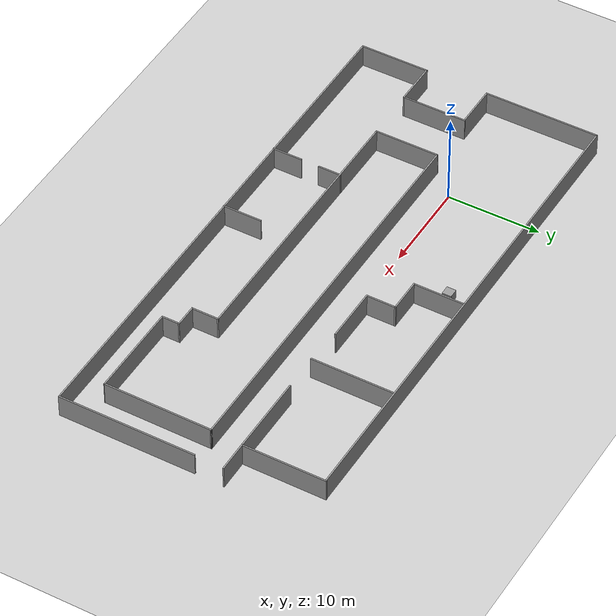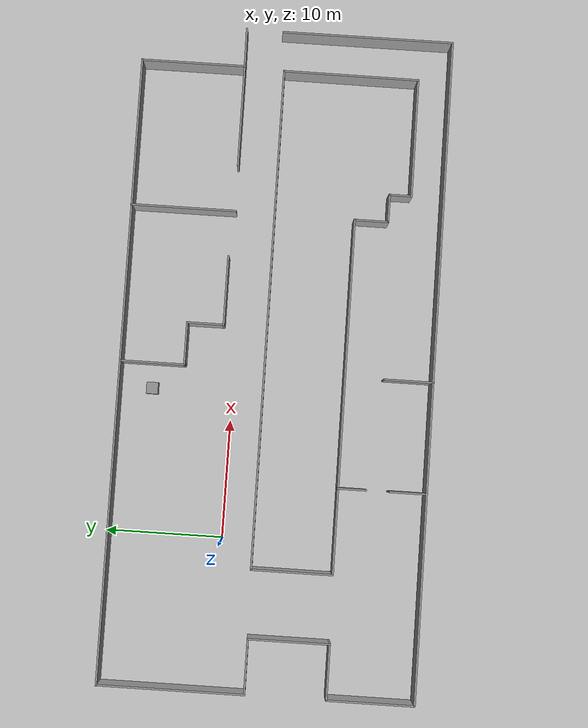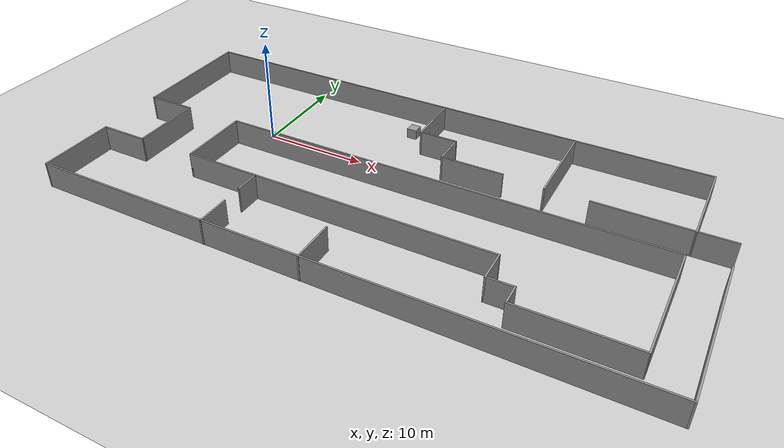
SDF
<sdf version="1.7">
 <world name="default">
  <light name="sun" type="directional">
   <pose>0 0 10 0 -0 0</pose>
   <diffuse>0.8 0.8 0.8 1</diffuse>
   <specular>0.2 0.2 0.2 1</specular>
   <attenuation>
    <range>1000</range>
    <constant>0.9</constant>
    <linear>0.01</linear>
    <quadratic>0.001</quadratic>
   </attenuation>
   <direction>-0.5 0.1 -0.9</direction>
   <spot><inner_angle>0</inner_angle><outer_angle>0</outer_angle><falloff>0</falloff></spot>
  </light>
  <model name="ground_plane">
   <static>1</static>
   <link name="link">
    <collision name="collision">
     <geometry><plane><normal>0 0 1</normal><size>100 100</size></plane></geometry>
     <surface>
      <contact><collide_bitmask>65535</collide_bitmask></contact>
      <friction><ode><mu>100</mu><mu2>50</mu2></ode></friction>
     </surface>
    </collision>
    <visual name="visual">
     <cast_shadows>0</cast_shadows>
     <geometry><plane><normal>0 0 1</normal><size>100 100</size></plane></geometry>
     <material>
      <script><uri>file://media/materials/scripts/gazebo.material</uri><name>Gazebo/Grey</name></script>
     </material>
    </visual>
   </link>
  </model>
  <gravity>0 0 -9.8</gravity>
  <magnetic_field>6e-06 2.3e-05 -4.2e-05</magnetic_field>
  <atmosphere type="adiabatic"/>
  <physics type="ode">
   <max_step_size>0.001</max_step_size>
   <real_time_factor>1</real_time_factor>
   <real_time_update_rate>1000</real_time_update_rate>
  </physics>
  <scene><ambient>0.4 0.4 0.4 1</ambient><background>0.7 0.7 0.7 1</background><shadows>1</shadows></scene>
  <spherical_coordinates>
   <surface_model>EARTH_WGS84</surface_model>
   <latitude_deg>0</latitude_deg>
   <longitude_deg>0</longitude_deg>
   <elevation>0</elevation>
   <heading_deg>0</heading_deg>
  </spherical_coordinates>
  <model name="Untitled">
   <pose>15.5252 -3.67448 0 0 -0 0</pose>
   <link name="Wall_10">
    <collision name="Wall_10_Collision">
     <geometry><box><size>12.5 0.15 2.5</size></box></geometry>
     <pose>0 0 1.25 0 -0 0</pose>
    </collision>
    <visual name="Wall_10_Visual">
     <pose>0 0 1.25 0 -0 0</pose>
     <geometry><box><size>12.5 0.15 2.5</size></box></geometry>
     <material>
      <script><uri>file://media/materials/scripts/gazebo.material</uri><name>Gazebo/Grey</name></script>
      <ambient>1 1 1 1</ambient>
     </material>
     <meta><layer>0</layer></meta>
    </visual>
    <pose>-28.2031 7.10336 0 0 -0 -1.5708</pose>
   </link>
   <link name="Wall_11">
    <collision name="Wall_11_Collision">
     <geometry><box><size>4.75 0.15 2.5</size></box></geometry>
     <pose>0 0 1.25 0 -0 0</pose>
    </collision>
    <visual name="Wall_11_Visual">
     <pose>0 0 1.25 0 -0 0</pose>
     <geometry><box><size>4.75 0.15 2.5</size></box></geometry>
     <material>
      <script><uri>file://media/materials/scripts/gazebo.material</uri><name>Gazebo/Grey</name></script>
      <ambient>1 1 1 1</ambient>
     </material>
     <meta><layer>0</layer></meta>
    </visual>
    <pose>-25.9031 0.928364 0 0 -0 0</pose>
   </link>
   <link name="Wall_12">
    <collision name="Wall_12_Collision">
     <geometry><box><size>7 0.15 2.5</size></box></geometry>
     <pose>0 0 1.25 0 -0 0</pose>
    </collision>
    <visual name="Wall_12_Visual">
     <pose>0 0 1.25 0 -0 0</pose>
     <geometry><box><size>7 0.15 2.5</size></box></geometry>
     <material>
      <script><uri>file://media/materials/scripts/gazebo.material</uri><name>Gazebo/Grey</name></script>
      <ambient>1 1 1 1</ambient>
     </material>
     <meta><layer>0</layer></meta>
    </visual>
    <pose>-23.6031 -2.49664 0 0 -0 -1.5708</pose>
   </link>
   <link name="Wall_13">
    <collision name="Wall_13_Collision">
     <geometry><box><size>4.75 0.15 2.5</size></box></geometry>
     <pose>0 0 1.25 0 -0 0</pose>
    </collision>
    <visual name="Wall_13_Visual">
     <pose>0 0 1.25 0 -0 0</pose>
     <geometry><box><size>4.75 0.15 2.5</size></box></geometry>
     <material>
      <script><uri>file://media/materials/scripts/gazebo.material</uri><name>Gazebo/Grey</name></script>
      <ambient>1 1 1 1</ambient>
     </material>
     <meta><layer>0</layer></meta>
    </visual>
    <pose>-25.9031 -5.92164 0 0 -0 3.14159</pose>
   </link>
   <link name="Wall_14">
    <collision name="Wall_14_Collision">
     <geometry><box><size>7.5 0.15 2.5</size></box></geometry>
     <pose>0 0 1.25 0 -0 0</pose>
    </collision>
    <visual name="Wall_14_Visual">
     <pose>0 0 1.25 0 -0 0</pose>
     <geometry><box><size>7.5 0.15 2.5</size></box></geometry>
     <material>
      <script><uri>file://media/materials/scripts/gazebo.material</uri><name>Gazebo/Grey</name></script>
      <ambient>1 1 1 1</ambient>
     </material>
     <meta><layer>0</layer></meta>
    </visual>
    <pose>-28.2031 -9.59664 0 0 -0 -1.5708</pose>
   </link>
   <link name="Wall_18">
    <collision name="Wall_18_Collision">
     <geometry><box><size>42.75 0.15 2.5</size></box></geometry>
     <pose>0 0 1.25 0 -0 0</pose>
    </collision>
    <visual name="Wall_18_Visual">
     <pose>0 0 1.25 0 -0 0</pose>
     <geometry><box><size>42.75 0.15 2.5</size></box></geometry>
     <material>
      <script><uri>file://media/materials/scripts/gazebo.material</uri><name>Gazebo/Grey</name></script>
      <ambient>1 1 1 1</ambient>
     </material>
     <meta><layer>0</layer></meta>
    </visual>
    <pose>3.43893 1.04183 0 0 -0 0</pose>
   </link>
   <link name="Wall_20">
    <collision name="Wall_20_Collision">
     <geometry><box><size>53.25 0.15 2.5</size></box></geometry>
     <pose>0 0 1.25 0 -0 0</pose>
    </collision>
    <visual name="Wall_20_Visual">
     <pose>0 0 1.25 0 -0 0</pose>
     <geometry><box><size>53.25 0.15 2.5</size></box></geometry>
     <material>
      <script><uri>file://media/materials/scripts/gazebo.material</uri><name>Gazebo/Grey</name></script>
      <ambient>1 1 1 1</ambient>
     </material>
     <meta><layer>0</layer></meta>
    </visual>
    <pose>-1.65313 13.2784 0 0 -0 0</pose>
   </link>
   <link name="Wall_23">
    <collision name="Wall_23_Collision">
     <geometry><box><size>9 0.15 2.5</size></box></geometry>
     <pose>0 0 1.25 0 -0 0</pose>
    </collision>
    <visual name="Wall_23_Visual">
     <pose>0 0 1.25 0 -0 0</pose>
     <geometry><box><size>9 0.15 2.5</size></box></geometry>
     <material>
      <script><uri>file://media/materials/scripts/gazebo.material</uri><name>Gazebo/Grey</name></script>
      <ambient>1 1 1 1</ambient>
     </material>
     <meta><layer>0</layer></meta>
    </visual>
    <pose>24.9343 8.87727 0 0 -0 1.5708</pose>
   </link>
   <link name="Wall_25">
    <collision name="Wall_25_Collision">
     <geometry><box><size>8.75 0.15 2.5</size></box></geometry>
     <pose>0 0 1.25 0 -0 0</pose>
    </collision>
    <visual name="Wall_25_Visual">
     <pose>0 0 1.25 0 -0 0</pose>
     <geometry><box><size>8.75 0.15 2.5</size></box></geometry>
     <material>
      <script><uri>file://media/materials/scripts/gazebo.material</uri><name>Gazebo/Grey</name></script>
      <ambient>1 1 1 1</ambient>
     </material>
     <meta><layer>0</layer></meta>
    </visual>
    <pose>20.6343 4.45227 0 0 -0 3.14159</pose>
   </link>
   <link name="Wall_27">
    <collision name="Wall_27_Collision">
     <geometry><box><size>9 0.15 2.5</size></box></geometry>
     <pose>0 0 1.25 0 -0 0</pose>
    </collision>
    <visual name="Wall_27_Visual">
     <pose>0 0 1.25 0 -0 0</pose>
     <geometry><box><size>9 0.15 2.5</size></box></geometry>
     <material>
      <script><uri>file://media/materials/scripts/gazebo.material</uri><name>Gazebo/Grey</name></script>
      <ambient>1 1 1 1</ambient>
     </material>
     <meta><layer>0</layer></meta>
    </visual>
    <pose>12.3285 8.81407 0 0 -0 1.5708</pose>
   </link>
   <link name="Wall_30">
    <collision name="Wall_30_Collision">
     <geometry><box><size>6 0.15 2.5</size></box></geometry>
     <pose>0 0 1.25 0 -0 0</pose>
    </collision>
    <visual name="Wall_30_Visual">
     <pose>0 0 1.25 0 -0 0</pose>
     <geometry><box><size>6 0.15 2.5</size></box></geometry>
     <material>
      <script><uri>file://media/materials/scripts/gazebo.material</uri><name>Gazebo/Grey</name></script>
      <ambient>1 1 1 1</ambient>
     </material>
     <meta><layer>0</layer></meta>
    </visual>
    <pose>5.45714 4.7348 0 0 -0 3.14159</pose>
   </link>
   <link name="Wall_33">
    <collision name="Wall_33_Collision">
     <geometry><box><size>3.25 0.15 2.5</size></box></geometry>
     <pose>0 0 1.25 0 -0 0</pose>
    </collision>
    <visual name="Wall_33_Visual">
     <pose>0 0 1.25 0 -0 0</pose>
     <geometry><box><size>3.25 0.15 2.5</size></box></geometry>
     <material>
      <script><uri>file://media/materials/scripts/gazebo.material</uri><name>Gazebo/Grey</name></script>
      <ambient>1 1 1 1</ambient>
     </material>
     <meta><layer>0</layer></meta>
    </visual>
    <pose>2.53214 6.2848 0 0 -0 1.5708</pose>
   </link>
   <link name="Wall_34">
    <collision name="Wall_34_Collision">
     <geometry><box><size>3.75 0.15 2.5</size></box></geometry>
     <pose>0 0 1.25 0 -0 0</pose>
    </collision>
    <visual name="Wall_34_Visual">
     <pose>0 0 1.25 0 -0 0</pose>
     <geometry><box><size>3.75 0.15 2.5</size></box></geometry>
     <material>
      <script><uri>file://media/materials/scripts/gazebo.material</uri><name>Gazebo/Grey</name></script>
      <ambient>1 1 1 1</ambient>
     </material>
     <meta><layer>0</layer></meta>
    </visual>
    <pose>0.732141 7.8348 0 0 -0 3.14159</pose>
   </link>
   <link name="Wall_35">
    <collision name="Wall_35_Collision">
     <geometry><box><size>5.5 0.15 2.5</size></box></geometry>
     <pose>0 0 1.25 0 -0 0</pose>
    </collision>
    <visual name="Wall_35_Visual">
     <pose>0 0 1.25 0 -0 0</pose>
     <geometry><box><size>5.5 0.15 2.5</size></box></geometry>
     <material>
      <script><uri>file://media/materials/scripts/gazebo.material</uri><name>Gazebo/Grey</name></script>
      <ambient>1 1 1 1</ambient>
     </material>
     <meta><layer>0</layer></meta>
    </visual>
    <pose>-1.06786 10.5098 0 0 -0 1.5708</pose>
   </link>
   <link name="Wall_37">
    <collision name="Wall_37_Collision">
     <geometry><box><size>7 0.15 2.5</size></box></geometry>
     <pose>0 0 1.25 0 -0 0</pose>
    </collision>
    <visual name="Wall_37_Visual">
     <pose>0 0 1.25 0 -0 0</pose>
     <geometry><box><size>7 0.15 2.5</size></box></geometry>
     <material>
      <script><uri>file://media/materials/scripts/gazebo.material</uri><name>Gazebo/Grey</name></script>
      <ambient>1 1 1 1</ambient>
     </material>
     <meta><layer>0</layer></meta>
    </visual>
    <pose>-17.8611 -2.38317 0 0 -0 -1.5708</pose>
   </link>
   <link name="Wall_40">
    <collision name="Wall_40_Collision">
     <geometry><box><size>30.25 0.15 2.5</size></box></geometry>
     <pose>0 0 1.25 0 -0 0</pose>
    </collision>
    <visual name="Wall_40_Visual">
     <pose>0 0 1.25 0 -0 0</pose>
     <geometry><box><size>30.25 0.15 2.5</size></box></geometry>
     <material>
      <script><uri>file://media/materials/scripts/gazebo.material</uri><name>Gazebo/Grey</name></script>
      <ambient>1 1 1 1</ambient>
     </material>
     <meta><layer>0</layer></meta>
    </visual>
    <pose>-2.81107 -5.80817 0 0 -0 0</pose>
   </link>
   <link name="Wall_41">
    <collision name="Wall_41_Collision">
     <geometry><box><size>3 0.15 2.5</size></box></geometry>
     <pose>0 0 1.25 0 -0 0</pose>
    </collision>
    <visual name="Wall_41_Visual">
     <pose>0 0 1.25 0 -0 0</pose>
     <geometry><box><size>3 0.15 2.5</size></box></geometry>
     <material>
      <script><uri>file://media/materials/scripts/gazebo.material</uri><name>Gazebo/Grey</name></script>
      <ambient>1 1 1 1</ambient>
     </material>
     <meta><layer>0</layer></meta>
    </visual>
    <pose>12.2389 -7.23317 0 0 -0 -1.5708</pose>
   </link>
   <link name="Wall_42">
    <collision name="Wall_42_Collision">
     <geometry><box><size>2.5 0.15 2.5</size></box></geometry>
     <pose>0 0 1.25 0 -0 0</pose>
    </collision>
    <visual name="Wall_42_Visual">
     <pose>0 0 1.25 0 -0 0</pose>
     <geometry><box><size>2.5 0.15 2.5</size></box></geometry>
     <material>
      <script><uri>file://media/materials/scripts/gazebo.material</uri><name>Gazebo/Grey</name></script>
      <ambient>1 1 1 1</ambient>
     </material>
     <meta><layer>0</layer></meta>
    </visual>
    <pose>13.4139 -8.65817 0 0 -0 0</pose>
   </link>
   <link name="Wall_43">
    <collision name="Wall_43_Collision">
     <geometry><box><size>2 0.15 2.5</size></box></geometry>
     <pose>0 0 1.25 0 -0 0</pose>
    </collision>
    <visual name="Wall_43_Visual">
     <pose>0 0 1.25 0 -0 0</pose>
     <geometry><box><size>2 0.15 2.5</size></box></geometry>
     <material>
      <script><uri>file://media/materials/scripts/gazebo.material</uri><name>Gazebo/Grey</name></script>
      <ambient>1 1 1 1</ambient>
     </material>
     <meta><layer>0</layer></meta>
    </visual>
    <pose>14.5889 -9.58318 0 0 -0 -1.5708</pose>
   </link>
   <link name="Wall_44">
    <collision name="Wall_44_Collision">
     <geometry><box><size>10.25 0.15 2.5</size></box></geometry>
     <pose>0 0 1.25 0 -0 0</pose>
    </collision>
    <visual name="Wall_44_Visual">
     <pose>0 0 1.25 0 -0 0</pose>
     <geometry><box><size>10.25 0.15 2.5</size></box></geometry>
     <material>
      <script><uri>file://media/materials/scripts/gazebo.material</uri><name>Gazebo/Grey</name></script>
      <ambient>1 1 1 1</ambient>
     </material>
     <meta><layer>0</layer></meta>
    </visual>
    <pose>19.6389 -10.5082 0 0 -0 0</pose>
   </link>
   <link name="Wall_45">
    <collision name="Wall_45_Collision">
     <geometry><box><size>11.7001 0.15 2.5</size></box></geometry>
     <pose>0 0 1.25 0 -0 0</pose>
    </collision>
    <visual name="Wall_45_Visual">
     <pose>0 0 1.25 0 -0 0</pose>
     <geometry><box><size>11.7001 0.15 2.5</size></box></geometry>
     <material>
      <script><uri>file://media/materials/scripts/gazebo.material</uri><name>Gazebo/Grey</name></script>
      <ambient>1 1 1 1</ambient>
     </material>
     <meta><layer>0</layer></meta>
    </visual>
    <pose>24.7139 -4.73317 0 0 -0 1.56647</pose>
   </link>
   <link name="Wall_48">
    <collision name="Wall_48_Collision">
     <geometry><box><size>56.5 0.15 2.5</size></box></geometry>
     <pose>0 0 1.25 0 -0 0</pose>
    </collision>
    <visual name="Wall_48_Visual">
     <pose>0 0 1.25 0 -0 0</pose>
     <geometry><box><size>56.5 0.15 2.5</size></box></geometry>
     <material>
      <script><uri>file://media/materials/scripts/gazebo.material</uri><name>Gazebo/Grey</name></script>
      <ambient>1 1 1 1</ambient>
     </material>
     <meta><layer>0</layer></meta>
    </visual>
    <pose>-0.028129 -13.2716 0 0 -0 0</pose>
   </link>
   <link name="Wall_49">
    <collision name="Wall_49_Collision">
     <geometry><box><size>14.75 0.15 2.5</size></box></geometry>
     <pose>0 0 1.25 0 -0 0</pose>
    </collision>
    <visual name="Wall_49_Visual">
     <pose>0 0 1.25 0 -0 0</pose>
     <geometry><box><size>14.75 0.15 2.5</size></box></geometry>
     <material>
      <script><uri>file://media/materials/scripts/gazebo.material</uri><name>Gazebo/Grey</name></script>
      <ambient>1 1 1 1</ambient>
     </material>
     <meta><layer>0</layer></meta>
    </visual>
    <pose>28.1469 -5.97164 0 0 -0 1.5708</pose>
   </link>
   <link name="Wall_52">
    <collision name="Wall_52_Collision">
     <geometry><box><size>4.25 0.15 2.5</size></box></geometry>
     <pose>0 0 1.25 0 -0 0</pose>
    </collision>
    <visual name="Wall_52_Visual">
     <pose>0 0 1.25 0 -0 0</pose>
     <geometry><box><size>4.25 0.15 2.5</size></box></geometry>
     <material>
      <script><uri>file://media/materials/scripts/gazebo.material</uri><name>Gazebo/Grey</name></script>
      <ambient>1 1 1 1</ambient>
     </material>
     <meta><layer>0</layer></meta>
    </visual>
    <pose>-1.21553 -11.2523 0 0 -0 1.5708</pose>
   </link>
   <link name="Wall_54">
    <collision name="Wall_54_Collision">
     <geometry><box><size>2.5 0.15 2.5</size></box></geometry>
     <pose>0 0 1.25 0 -0 0</pose>
    </collision>
    <visual name="Wall_54_Visual">
     <pose>0 0 1.25 0 -0 0</pose>
     <geometry><box><size>2.5 0.15 2.5</size></box></geometry>
     <material>
      <script><uri>file://media/materials/scripts/gazebo.material</uri><name>Gazebo/Grey</name></script>
      <ambient>1 1 1 1</ambient>
     </material>
     <meta><layer>0</layer></meta>
    </visual>
    <pose>-10.6293 -6.97087 0 0 -0 -1.5708</pose>
   </link>
   <link name="Wall_56">
    <collision name="Wall_56_Collision">
     <geometry><box><size>3.25 0.15 2.5</size></box></geometry>
     <pose>0 0 1.25 0 -0 0</pose>
    </collision>
    <visual name="Wall_56_Visual">
     <pose>0 0 1.25 0 -0 0</pose>
     <geometry><box><size>3.25 0.15 2.5</size></box></geometry>
     <material>
      <script><uri>file://media/materials/scripts/gazebo.material</uri><name>Gazebo/Grey</name></script>
      <ambient>1 1 1 1</ambient>
     </material>
     <meta><layer>0</layer></meta>
    </visual>
    <pose>-10.6293 -11.7523 0 0 -0 1.5708</pose>
   </link>
   <link name="Wall_59">
    <collision name="Wall_59_Collision">
     <geometry><box><size>3.41825 0.15 2.5</size></box></geometry>
     <pose>0 0 1.25 0 -0 0</pose>
    </collision>
    <visual name="Wall_59_Visual">
     <pose>0 0 1.25 0 -0 0</pose>
     <geometry><box><size>3.41825 0.15 2.5</size></box></geometry>
     <material>
      <script><uri>file://media/materials/scripts/gazebo.material</uri><name>Gazebo/Grey</name></script>
      <ambient>1 1 1 1</ambient>
     </material>
     <meta><layer>0</layer></meta>
    </visual>
    <pose>26.5684 4.46762 0 0 -0 -3.1322</pose>
   </link>
   <static>1</static>
  </model>
  <model name="Untitled_1">
   <link name="link_0">
    <inertial>
     <mass>1</mass>
     <inertia>
      <ixx>0.166667</ixx>
      <ixy>0</ixy>
      <ixz>0</ixz>
      <iyy>0.166667</iyy>
      <iyz>0</iyz>
      <izz>0.166667</izz>
     </inertia>
    </inertial>
    <pose>-1.2e-05 -4e-06 0 0 -0 0</pose>
    <visual name="visual">
     <geometry><box><size>1 1 1</size></box></geometry>
     <material>
      <lighting>1</lighting>
      <script><uri>file://media/materials/scripts/gazebo.material</uri><name>Gazebo/Grey</name></script>
      <shader type="pixel"/>
     </material>
    </visual>
    <collision name="collision">
     <geometry><box><size>1 1 1</size></box></geometry>
     <surface>
      <friction>
       <ode><mu>1</mu><mu2>1</mu2><fdir1>0 0 0</fdir1><slip1>0</slip1><slip2>0</slip2></ode>
       <torsional>
        <coefficient>1</coefficient>
        <patch_radius>0</patch_radius>
        <surface_radius>0</surface_radius>
        <use_patch_radius>1</use_patch_radius>
        <ode><slip>0</slip></ode>
       </torsional>
      </friction>
      <bounce><restitution_coefficient>0</restitution_coefficient><threshold>1e+06</threshold></bounce>
      <contact>
       <collide_without_contact>0</collide_without_contact>
       <collide_without_contact_bitmask>1</collide_without_contact_bitmask>
       <collide_bitmask>1</collide_bitmask>
       <ode>
        <soft_cfm>0</soft_cfm>
        <soft_erp>0.2</soft_erp>
        <kp>1e+13</kp>
        <kd>1</kd>
        <max_vel>0.01</max_vel>
        <min_depth>0</min_depth>
       </ode>
       <bullet>
        <split_impulse>1</split_impulse>
        <split_impulse_penetration_threshold>-0.01</split_impulse_penetration_threshold>
        <soft_cfm>0</soft_cfm>
        <soft_erp>0.2</soft_erp>
        <kp>1e+13</kp>
        <kd>1</kd>
       </bullet>
      </contact>
     </surface>
    </collision>
   </link>
   <static>0</static>
   <pose>12.3802 6.85414 0.5 0 -0 0</pose>
  </model>
 </world>
</sdf>
